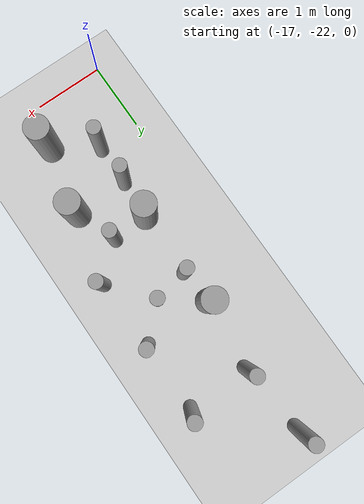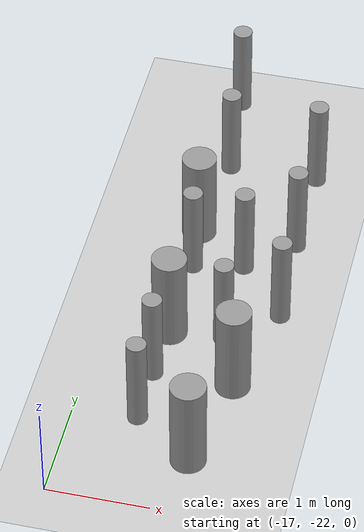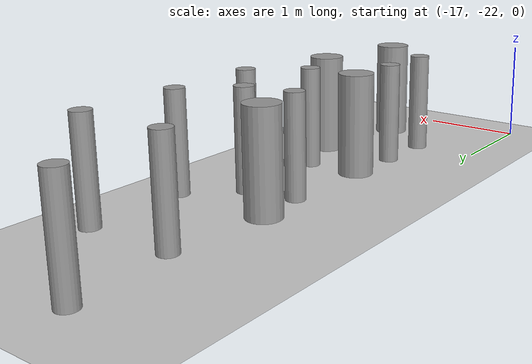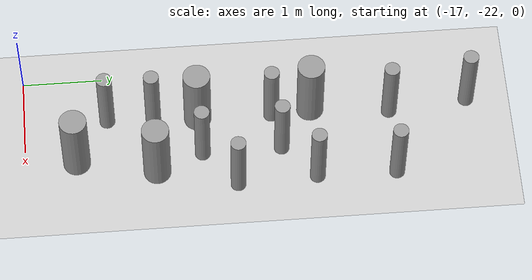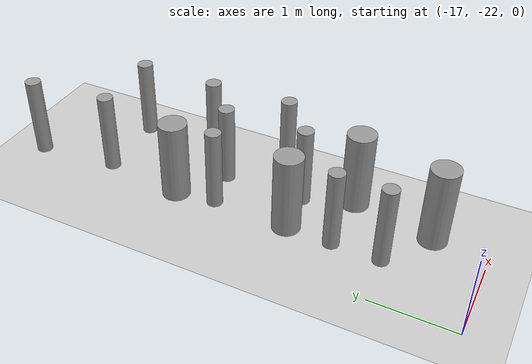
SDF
<sdf version="1.6">
 <world name="default">
  <model name="ground_plane">
   <static>1</static>
   <link name="link">
    <collision name="collision">
     <geometry><plane><normal>0 0 1</normal><size>100 100</size></plane></geometry>
     <surface><friction><ode><mu>100</mu><mu2>50</mu2></ode></friction></surface>
    </collision>
    <visual name="visual">
     <cast_shadows>0</cast_shadows>
     <geometry><plane><normal>0 0 1</normal><size>100 100</size></plane></geometry>
     <material>
      <script><uri>file://media/materials/scripts/gazebo.material</uri><name>Gazebo/Grey</name></script>
     </material>
    </visual>
   </link>
  </model>
  <model name="cyl_wall_clone_clone_1_clone_1_clone_clone_clone_clone_3">
   <link name="link_0">
    <pose>-2.73893 -0.366465 0 0 -0 0</pose>
    <inertial>
     <mass>0.0374993</mass>
     <inertia>
      <ixx>0.00321281</ixx>
      <ixy>0</ixy>
      <ixz>0</ixz>
      <iyy>0.00321281</iyy>
      <iyz>0</iyz>
      <izz>0.000175774</izz>
     </inertia>
    </inertial>
    <visual name="visual">
     <geometry><cylinder><radius>0.0968661</radius><length>1</length></cylinder></geometry>
     <material>
      <lighting>1</lighting>
      <script><uri>file://media/materials/scripts/gazebo.material</uri><name>Gazebo/Grey</name></script>
      <ambient>0.3 0.3 0.3 1</ambient>
      <diffuse>0.7 0.7 0.7 1</diffuse>
      <specular>0.01 0.01 0.01 1</specular>
      <emissive>0 0 0 1</emissive>
     </material>
    </visual>
    <collision name="collision">
     <geometry><cylinder><radius>0.096866</radius><length>1</length></cylinder></geometry>
     <surface>
      <friction>
       <ode><mu>1</mu><mu2>1</mu2><fdir1>0 0 0</fdir1><slip1>0</slip1><slip2>0</slip2></ode>
       <torsional>
        <coefficient>1</coefficient>
        <patch_radius>0</patch_radius>
        <surface_radius>0</surface_radius>
        <use_patch_radius>1</use_patch_radius>
        <ode><slip>0</slip></ode>
       </torsional>
      </friction>
      <bounce><restitution_coefficient>0</restitution_coefficient><threshold>1e+06</threshold></bounce>
      <contact>
       <collide_without_contact>0</collide_without_contact>
       <collide_without_contact_bitmask>1</collide_without_contact_bitmask>
       <collide_bitmask>1</collide_bitmask>
       <ode>
        <soft_cfm>0</soft_cfm>
        <soft_erp>0.2</soft_erp>
        <kp>1e+13</kp>
        <kd>1</kd>
        <max_vel>0.01</max_vel>
        <min_depth>0</min_depth>
       </ode>
       <bullet>
        <split_impulse>1</split_impulse>
        <split_impulse_penetration_threshold>-0.01</split_impulse_penetration_threshold>
        <soft_cfm>0</soft_cfm>
        <soft_erp>0.2</soft_erp>
        <kp>1e+13</kp>
        <kd>1</kd>
       </bullet>
      </contact>
     </surface>
    </collision>
   </link>
   <link name="link_0_clone">
    <pose>-1.73893 0.61877 0 0 -0 0</pose>
    <inertial>
     <mass>0.0374993</mass>
     <inertia>
      <ixx>0.00321281</ixx>
      <ixy>0</ixy>
      <ixz>0</ixz>
      <iyy>0.00321281</iyy>
      <iyz>0</iyz>
      <izz>0.000175774</izz>
     </inertia>
    </inertial>
    <visual name="visual">
     <geometry><cylinder><radius>0.0968661</radius><length>1</length></cylinder></geometry>
     <material>
      <lighting>1</lighting>
      <script><uri>file://media/materials/scripts/gazebo.material</uri><name>Gazebo/Grey</name></script>
      <ambient>0.3 0.3 0.3 1</ambient>
      <diffuse>0.7 0.7 0.7 1</diffuse>
      <specular>0.01 0.01 0.01 1</specular>
      <emissive>0 0 0 1</emissive>
      <shader type="pixel"/>
     </material>
    </visual>
    <collision name="collision">
     <geometry><cylinder><radius>0.096866</radius><length>1</length></cylinder></geometry>
     <surface>
      <friction>
       <ode><mu>1</mu><mu2>1</mu2><fdir1>0 0 0</fdir1><slip1>0</slip1><slip2>0</slip2></ode>
       <torsional>
        <coefficient>1</coefficient>
        <patch_radius>0</patch_radius>
        <surface_radius>0</surface_radius>
        <use_patch_radius>1</use_patch_radius>
        <ode><slip>0</slip></ode>
       </torsional>
      </friction>
      <bounce><restitution_coefficient>0</restitution_coefficient><threshold>1e+06</threshold></bounce>
      <contact>
       <collide_without_contact>0</collide_without_contact>
       <collide_without_contact_bitmask>1</collide_without_contact_bitmask>
       <collide_bitmask>1</collide_bitmask>
       <ode>
        <soft_cfm>0</soft_cfm>
        <soft_erp>0.2</soft_erp>
        <kp>1e+13</kp>
        <kd>1</kd>
        <max_vel>0.01</max_vel>
        <min_depth>0</min_depth>
       </ode>
       <bullet>
        <split_impulse>1</split_impulse>
        <split_impulse_penetration_threshold>-0.01</split_impulse_penetration_threshold>
        <soft_cfm>0</soft_cfm>
        <soft_erp>0.2</soft_erp>
        <kp>1e+13</kp>
        <kd>1</kd>
       </bullet>
      </contact>
     </surface>
    </collision>
   </link>
   <link name="link_0_clone_clone">
    <pose>-0.327073 0.143919 0 0 -0 0</pose>
    <inertial>
     <mass>0.0374993</mass>
     <inertia>
      <ixx>0.00321281</ixx>
      <ixy>0</ixy>
      <ixz>0</ixz>
      <iyy>0.00321281</iyy>
      <iyz>0</iyz>
      <izz>0.000175774</izz>
     </inertia>
    </inertial>
    <visual name="visual">
     <geometry><cylinder><radius>0.0968661</radius><length>1</length></cylinder></geometry>
     <material>
      <lighting>1</lighting>
      <script><uri>file://media/materials/scripts/gazebo.material</uri><name>Gazebo/Grey</name></script>
      <ambient>0.3 0.3 0.3 1</ambient>
      <diffuse>0.7 0.7 0.7 1</diffuse>
      <specular>0.01 0.01 0.01 1</specular>
      <emissive>0 0 0 1</emissive>
      <shader type="pixel"/>
     </material>
    </visual>
    <collision name="collision">
     <geometry><cylinder><radius>0.096866</radius><length>1</length></cylinder></geometry>
     <surface>
      <friction>
       <ode><mu>1</mu><mu2>1</mu2><fdir1>0 0 0</fdir1><slip1>0</slip1><slip2>0</slip2></ode>
       <torsional>
        <coefficient>1</coefficient>
        <patch_radius>0</patch_radius>
        <surface_radius>0</surface_radius>
        <use_patch_radius>1</use_patch_radius>
        <ode><slip>0</slip></ode>
       </torsional>
      </friction>
      <bounce><restitution_coefficient>0</restitution_coefficient><threshold>1e+06</threshold></bounce>
      <contact>
       <collide_without_contact>0</collide_without_contact>
       <collide_without_contact_bitmask>1</collide_without_contact_bitmask>
       <collide_bitmask>1</collide_bitmask>
       <ode>
        <soft_cfm>0</soft_cfm>
        <soft_erp>0.2</soft_erp>
        <kp>1e+13</kp>
        <kd>1</kd>
        <max_vel>0.01</max_vel>
        <min_depth>0</min_depth>
       </ode>
       <bullet>
        <split_impulse>1</split_impulse>
        <split_impulse_penetration_threshold>-0.01</split_impulse_penetration_threshold>
        <soft_cfm>0</soft_cfm>
        <soft_erp>0.2</soft_erp>
        <kp>1e+13</kp>
        <kd>1</kd>
       </bullet>
      </contact>
     </surface>
    </collision>
   </link>
   <link name="link_0_clone_clone_0">
    <pose>1.26107 -0.419359 0 0 -0 0</pose>
    <inertial>
     <mass>0.0374993</mass>
     <inertia>
      <ixx>0.00321281</ixx>
      <ixy>0</ixy>
      <ixz>0</ixz>
      <iyy>0.00321281</iyy>
      <iyz>0</iyz>
      <izz>0.000175774</izz>
     </inertia>
    </inertial>
    <visual name="visual">
     <geometry><cylinder><radius>0.0968661</radius><length>1</length></cylinder></geometry>
     <material>
      <lighting>1</lighting>
      <script><uri>file://media/materials/scripts/gazebo.material</uri><name>Gazebo/Grey</name></script>
      <ambient>0.3 0.3 0.3 1</ambient>
      <diffuse>0.7 0.7 0.7 1</diffuse>
      <specular>0.01 0.01 0.01 1</specular>
      <emissive>0 0 0 1</emissive>
      <shader type="pixel"/>
     </material>
    </visual>
    <collision name="collision">
     <geometry><cylinder><radius>0.096866</radius><length>1</length></cylinder></geometry>
     <surface>
      <friction>
       <ode><mu>1</mu><mu2>1</mu2><fdir1>0 0 0</fdir1><slip1>0</slip1><slip2>0</slip2></ode>
       <torsional>
        <coefficient>1</coefficient>
        <patch_radius>0</patch_radius>
        <surface_radius>0</surface_radius>
        <use_patch_radius>1</use_patch_radius>
        <ode><slip>0</slip></ode>
       </torsional>
      </friction>
      <bounce><restitution_coefficient>0</restitution_coefficient><threshold>1e+06</threshold></bounce>
      <contact>
       <collide_without_contact>0</collide_without_contact>
       <collide_without_contact_bitmask>1</collide_without_contact_bitmask>
       <collide_bitmask>1</collide_bitmask>
       <ode>
        <soft_cfm>0</soft_cfm>
        <soft_erp>0.2</soft_erp>
        <kp>1e+13</kp>
        <kd>1</kd>
        <max_vel>0.01</max_vel>
        <min_depth>0</min_depth>
       </ode>
       <bullet>
        <split_impulse>1</split_impulse>
        <split_impulse_penetration_threshold>-0.01</split_impulse_penetration_threshold>
        <soft_cfm>0</soft_cfm>
        <soft_erp>0.2</soft_erp>
        <kp>1e+13</kp>
        <kd>1</kd>
       </bullet>
      </contact>
     </surface>
    </collision>
   </link>
   <link name="link_0_clone_clone_1">
    <pose>-1.73893 -0.277168 0 0 -0 0</pose>
    <inertial>
     <mass>0.0374993</mass>
     <inertia>
      <ixx>0.00321281</ixx>
      <ixy>0</ixy>
      <ixz>0</ixz>
      <iyy>0.00321281</iyy>
      <iyz>0</iyz>
      <izz>0.000175774</izz>
     </inertia>
    </inertial>
    <visual name="visual">
     <geometry><cylinder><radius>0.0968661</radius><length>1</length></cylinder></geometry>
     <material>
      <lighting>1</lighting>
      <script><uri>file://media/materials/scripts/gazebo.material</uri><name>Gazebo/Grey</name></script>
      <ambient>0.3 0.3 0.3 1</ambient>
      <diffuse>0.7 0.7 0.7 1</diffuse>
      <specular>0.01 0.01 0.01 1</specular>
      <emissive>0 0 0 1</emissive>
      <shader type="pixel"/>
     </material>
    </visual>
    <collision name="collision">
     <geometry><cylinder><radius>0.096866</radius><length>1</length></cylinder></geometry>
     <surface>
      <friction>
       <ode><mu>1</mu><mu2>1</mu2><fdir1>0 0 0</fdir1><slip1>0</slip1><slip2>0</slip2></ode>
       <torsional>
        <coefficient>1</coefficient>
        <patch_radius>0</patch_radius>
        <surface_radius>0</surface_radius>
        <use_patch_radius>1</use_patch_radius>
        <ode><slip>0</slip></ode>
       </torsional>
      </friction>
      <bounce><restitution_coefficient>0</restitution_coefficient><threshold>1e+06</threshold></bounce>
      <contact>
       <collide_without_contact>0</collide_without_contact>
       <collide_without_contact_bitmask>1</collide_without_contact_bitmask>
       <collide_bitmask>1</collide_bitmask>
       <ode>
        <soft_cfm>0</soft_cfm>
        <soft_erp>0.2</soft_erp>
        <kp>1e+13</kp>
        <kd>1</kd>
        <max_vel>0.01</max_vel>
        <min_depth>0</min_depth>
       </ode>
       <bullet>
        <split_impulse>1</split_impulse>
        <split_impulse_penetration_threshold>-0.01</split_impulse_penetration_threshold>
        <soft_cfm>0</soft_cfm>
        <soft_erp>0.2</soft_erp>
        <kp>1e+13</kp>
        <kd>1</kd>
       </bullet>
      </contact>
     </surface>
    </collision>
   </link>
   <link name="link_0_clone_clone_2">
    <pose>-0.738934 0.593961 0 0 -0 0</pose>
    <inertial>
     <mass>0.0374993</mass>
     <inertia>
      <ixx>0.00321281</ixx>
      <ixy>0</ixy>
      <ixz>0</ixz>
      <iyy>0.00321281</iyy>
      <iyz>0</iyz>
      <izz>0.000175774</izz>
     </inertia>
    </inertial>
    <visual name="visual">
     <geometry><cylinder><radius>0.0968661</radius><length>1</length></cylinder></geometry>
     <material>
      <lighting>1</lighting>
      <script><uri>file://media/materials/scripts/gazebo.material</uri><name>Gazebo/Grey</name></script>
      <ambient>0.3 0.3 0.3 1</ambient>
      <diffuse>0.7 0.7 0.7 1</diffuse>
      <specular>0.01 0.01 0.01 1</specular>
      <emissive>0 0 0 1</emissive>
      <shader type="pixel"/>
     </material>
    </visual>
    <collision name="collision">
     <geometry><cylinder><radius>0.096866</radius><length>1</length></cylinder></geometry>
     <surface>
      <friction>
       <ode><mu>1</mu><mu2>1</mu2><fdir1>0 0 0</fdir1><slip1>0</slip1><slip2>0</slip2></ode>
       <torsional>
        <coefficient>1</coefficient>
        <patch_radius>0</patch_radius>
        <surface_radius>0</surface_radius>
        <use_patch_radius>1</use_patch_radius>
        <ode><slip>0</slip></ode>
       </torsional>
      </friction>
      <bounce><restitution_coefficient>0</restitution_coefficient><threshold>1e+06</threshold></bounce>
      <contact>
       <collide_without_contact>0</collide_without_contact>
       <collide_without_contact_bitmask>1</collide_without_contact_bitmask>
       <collide_bitmask>1</collide_bitmask>
       <ode>
        <soft_cfm>0</soft_cfm>
        <soft_erp>0.2</soft_erp>
        <kp>1e+13</kp>
        <kd>1</kd>
        <max_vel>0.01</max_vel>
        <min_depth>0</min_depth>
       </ode>
       <bullet>
        <split_impulse>1</split_impulse>
        <split_impulse_penetration_threshold>-0.01</split_impulse_penetration_threshold>
        <soft_cfm>0</soft_cfm>
        <soft_erp>0.2</soft_erp>
        <kp>1e+13</kp>
        <kd>1</kd>
       </bullet>
      </contact>
     </surface>
    </collision>
   </link>
   <link name="link_0_clone_clone_3">
    <pose>0.261066 0.624849 0 0 -0 0</pose>
    <inertial>
     <mass>0.0374993</mass>
     <inertia>
      <ixx>0.00321281</ixx>
      <ixy>0</ixy>
      <ixz>0</ixz>
      <iyy>0.00321281</iyy>
      <iyz>0</iyz>
      <izz>0.000175774</izz>
     </inertia>
    </inertial>
    <visual name="visual">
     <geometry><cylinder><radius>0.0968661</radius><length>1</length></cylinder></geometry>
     <material>
      <lighting>1</lighting>
      <script><uri>file://media/materials/scripts/gazebo.material</uri><name>Gazebo/Grey</name></script>
      <ambient>0.3 0.3 0.3 1</ambient>
      <diffuse>0.7 0.7 0.7 1</diffuse>
      <specular>0.01 0.01 0.01 1</specular>
      <emissive>0 0 0 1</emissive>
      <shader type="pixel"/>
     </material>
    </visual>
    <collision name="collision">
     <geometry><cylinder><radius>0.096866</radius><length>1</length></cylinder></geometry>
     <surface>
      <friction>
       <ode><mu>1</mu><mu2>1</mu2><fdir1>0 0 0</fdir1><slip1>0</slip1><slip2>0</slip2></ode>
       <torsional>
        <coefficient>1</coefficient>
        <patch_radius>0</patch_radius>
        <surface_radius>0</surface_radius>
        <use_patch_radius>1</use_patch_radius>
        <ode><slip>0</slip></ode>
       </torsional>
      </friction>
      <bounce><restitution_coefficient>0</restitution_coefficient><threshold>1e+06</threshold></bounce>
      <contact>
       <collide_without_contact>0</collide_without_contact>
       <collide_without_contact_bitmask>1</collide_without_contact_bitmask>
       <collide_bitmask>1</collide_bitmask>
       <ode>
        <soft_cfm>0</soft_cfm>
        <soft_erp>0.2</soft_erp>
        <kp>1e+13</kp>
        <kd>1</kd>
        <max_vel>0.01</max_vel>
        <min_depth>0</min_depth>
       </ode>
       <bullet>
        <split_impulse>1</split_impulse>
        <split_impulse_penetration_threshold>-0.01</split_impulse_penetration_threshold>
        <soft_cfm>0</soft_cfm>
        <soft_erp>0.2</soft_erp>
        <kp>1e+13</kp>
        <kd>1</kd>
       </bullet>
      </contact>
     </surface>
    </collision>
   </link>
   <link name="link_0_clone_clone_4">
    <pose>-0.239049 -0.353105 0 0 -0 0</pose>
    <inertial>
     <mass>0.0374993</mass>
     <inertia>
      <ixx>0.00321281</ixx>
      <ixy>0</ixy>
      <ixz>0</ixz>
      <iyy>0.00321281</iyy>
      <iyz>0</iyz>
      <izz>0.000175774</izz>
     </inertia>
    </inertial>
    <visual name="visual">
     <geometry><cylinder><radius>0.0968661</radius><length>1</length></cylinder></geometry>
     <material>
      <lighting>1</lighting>
      <script><uri>file://media/materials/scripts/gazebo.material</uri><name>Gazebo/Grey</name></script>
      <ambient>0.3 0.3 0.3 1</ambient>
      <diffuse>0.7 0.7 0.7 1</diffuse>
      <specular>0.01 0.01 0.01 1</specular>
      <emissive>0 0 0 1</emissive>
      <shader type="pixel"/>
     </material>
    </visual>
    <collision name="collision">
     <geometry><cylinder><radius>0.096866</radius><length>1</length></cylinder></geometry>
     <surface>
      <friction>
       <ode><mu>1</mu><mu2>1</mu2><fdir1>0 0 0</fdir1><slip1>0</slip1><slip2>0</slip2></ode>
       <torsional>
        <coefficient>1</coefficient>
        <patch_radius>0</patch_radius>
        <surface_radius>0</surface_radius>
        <use_patch_radius>1</use_patch_radius>
        <ode><slip>0</slip></ode>
       </torsional>
      </friction>
      <bounce><restitution_coefficient>0</restitution_coefficient><threshold>1e+06</threshold></bounce>
      <contact>
       <collide_without_contact>0</collide_without_contact>
       <collide_without_contact_bitmask>1</collide_without_contact_bitmask>
       <collide_bitmask>1</collide_bitmask>
       <ode>
        <soft_cfm>0</soft_cfm>
        <soft_erp>0.2</soft_erp>
        <kp>1e+13</kp>
        <kd>1</kd>
        <max_vel>0.01</max_vel>
        <min_depth>0</min_depth>
       </ode>
       <bullet>
        <split_impulse>1</split_impulse>
        <split_impulse_penetration_threshold>-0.01</split_impulse_penetration_threshold>
        <soft_cfm>0</soft_cfm>
        <soft_erp>0.2</soft_erp>
        <kp>1e+13</kp>
        <kd>1</kd>
       </bullet>
      </contact>
     </surface>
    </collision>
   </link>
   <link name="link_0_clone_clone_5">
    <pose>0.672792 0.143919 0 0 -0 0</pose>
    <inertial>
     <mass>0.0374993</mass>
     <inertia>
      <ixx>0.00321281</ixx>
      <ixy>0</ixy>
      <ixz>0</ixz>
      <iyy>0.00321281</iyy>
      <iyz>0</iyz>
      <izz>0.000175774</izz>
     </inertia>
    </inertial>
    <visual name="visual">
     <geometry><cylinder><radius>0.0968661</radius><length>1</length></cylinder></geometry>
     <material>
      <lighting>1</lighting>
      <script><uri>file://media/materials/scripts/gazebo.material</uri><name>Gazebo/Grey</name></script>
      <ambient>0.3 0.3 0.3 1</ambient>
      <diffuse>0.7 0.7 0.7 1</diffuse>
      <specular>0.01 0.01 0.01 1</specular>
      <emissive>0 0 0 1</emissive>
      <shader type="pixel"/>
     </material>
    </visual>
    <collision name="collision">
     <geometry><cylinder><radius>0.096866</radius><length>1</length></cylinder></geometry>
     <surface>
      <friction>
       <ode><mu>1</mu><mu2>1</mu2><fdir1>0 0 0</fdir1><slip1>0</slip1><slip2>0</slip2></ode>
       <torsional>
        <coefficient>1</coefficient>
        <patch_radius>0</patch_radius>
        <surface_radius>0</surface_radius>
        <use_patch_radius>1</use_patch_radius>
        <ode><slip>0</slip></ode>
       </torsional>
      </friction>
      <bounce><restitution_coefficient>0</restitution_coefficient><threshold>1e+06</threshold></bounce>
      <contact>
       <collide_without_contact>0</collide_without_contact>
       <collide_without_contact_bitmask>1</collide_without_contact_bitmask>
       <collide_bitmask>1</collide_bitmask>
       <ode>
        <soft_cfm>0</soft_cfm>
        <soft_erp>0.2</soft_erp>
        <kp>1e+13</kp>
        <kd>1</kd>
        <max_vel>0.01</max_vel>
        <min_depth>0</min_depth>
       </ode>
       <bullet>
        <split_impulse>1</split_impulse>
        <split_impulse_penetration_threshold>-0.01</split_impulse_penetration_threshold>
        <soft_cfm>0</soft_cfm>
        <soft_erp>0.2</soft_erp>
        <kp>1e+13</kp>
        <kd>1</kd>
       </bullet>
      </contact>
     </surface>
    </collision>
   </link>
   <link name="link_0_clone_clone_6">
    <pose>1.84596 -0.433423 0 0 -0 0</pose>
    <inertial>
     <mass>0.0374993</mass>
     <inertia>
      <ixx>0.00321281</ixx>
      <ixy>0</ixy>
      <ixz>0</ixz>
      <iyy>0.00321281</iyy>
      <iyz>0</iyz>
      <izz>0.000175774</izz>
     </inertia>
    </inertial>
    <visual name="visual">
     <geometry><cylinder><radius>0.0968661</radius><length>1</length></cylinder></geometry>
     <material>
      <lighting>1</lighting>
      <script><uri>file://media/materials/scripts/gazebo.material</uri><name>Gazebo/Grey</name></script>
      <ambient>0.3 0.3 0.3 1</ambient>
      <diffuse>0.7 0.7 0.7 1</diffuse>
      <specular>0.01 0.01 0.01 1</specular>
      <emissive>0 0 0 1</emissive>
      <shader type="pixel"/>
     </material>
    </visual>
    <collision name="collision">
     <geometry><cylinder><radius>0.096866</radius><length>1</length></cylinder></geometry>
     <surface>
      <friction>
       <ode><mu>1</mu><mu2>1</mu2><fdir1>0 0 0</fdir1><slip1>0</slip1><slip2>0</slip2></ode>
       <torsional>
        <coefficient>1</coefficient>
        <patch_radius>0</patch_radius>
        <surface_radius>0</surface_radius>
        <use_patch_radius>1</use_patch_radius>
        <ode><slip>0</slip></ode>
       </torsional>
      </friction>
      <bounce><restitution_coefficient>0</restitution_coefficient><threshold>1e+06</threshold></bounce>
      <contact>
       <collide_without_contact>0</collide_without_contact>
       <collide_without_contact_bitmask>1</collide_without_contact_bitmask>
       <collide_bitmask>1</collide_bitmask>
       <ode>
        <soft_cfm>0</soft_cfm>
        <soft_erp>0.2</soft_erp>
        <kp>1e+13</kp>
        <kd>1</kd>
        <max_vel>0.01</max_vel>
        <min_depth>0</min_depth>
       </ode>
       <bullet>
        <split_impulse>1</split_impulse>
        <split_impulse_penetration_threshold>-0.01</split_impulse_penetration_threshold>
        <soft_cfm>0</soft_cfm>
        <soft_erp>0.2</soft_erp>
        <kp>1e+13</kp>
        <kd>1</kd>
       </bullet>
      </contact>
     </surface>
    </collision>
   </link>
   <link name="link_1">
    <pose>-0.738934 -0.397931 0 0 -0 0</pose>
    <inertial>
     <mass>0.117398</mass>
     <inertia>
      <ixx>0.0106445</ixx>
      <ixy>0</ixy>
      <ixz>0</ixz>
      <iyy>0.0106445</iyy>
      <iyz>0</iyz>
      <izz>0.00172278</izz>
     </inertia>
    </inertial>
    <visual name="visual">
     <geometry><cylinder><radius>0.171317</radius><length>1</length></cylinder></geometry>
     <material>
      <lighting>1</lighting>
      <script><uri>file://media/materials/scripts/gazebo.material</uri><name>Gazebo/Grey</name></script>
      <ambient>0.3 0.3 0.3 1</ambient>
      <diffuse>0.7 0.7 0.7 1</diffuse>
      <specular>0.01 0.01 0.01 1</specular>
      <emissive>0 0 0 1</emissive>
     </material>
    </visual>
    <collision name="collision">
     <geometry><cylinder><radius>0.171317</radius><length>1</length></cylinder></geometry>
     <surface>
      <friction>
       <ode><mu>1</mu><mu2>1</mu2><fdir1>0 0 0</fdir1><slip1>0</slip1><slip2>0</slip2></ode>
       <torsional>
        <coefficient>1</coefficient>
        <patch_radius>0</patch_radius>
        <surface_radius>0</surface_radius>
        <use_patch_radius>1</use_patch_radius>
        <ode><slip>0</slip></ode>
       </torsional>
      </friction>
      <bounce><restitution_coefficient>0</restitution_coefficient><threshold>1e+06</threshold></bounce>
      <contact>
       <collide_without_contact>0</collide_without_contact>
       <collide_without_contact_bitmask>1</collide_without_contact_bitmask>
       <collide_bitmask>1</collide_bitmask>
       <ode>
        <soft_cfm>0</soft_cfm>
        <soft_erp>0.2</soft_erp>
        <kp>1e+13</kp>
        <kd>1</kd>
        <max_vel>0.01</max_vel>
        <min_depth>0</min_depth>
       </ode>
       <bullet>
        <split_impulse>1</split_impulse>
        <split_impulse_penetration_threshold>-0.01</split_impulse_penetration_threshold>
        <soft_cfm>0</soft_cfm>
        <soft_erp>0.2</soft_erp>
        <kp>1e+13</kp>
        <kd>1</kd>
       </bullet>
      </contact>
     </surface>
    </collision>
   </link>
   <link name="link_1_clone">
    <pose>0.697784 -0.380861 0 0 -0 0</pose>
    <inertial>
     <mass>0.117398</mass>
     <inertia>
      <ixx>0.0106445</ixx>
      <ixy>0</ixy>
      <ixz>0</ixz>
      <iyy>0.0106445</iyy>
      <iyz>0</iyz>
      <izz>0.00172278</izz>
     </inertia>
    </inertial>
    <visual name="visual">
     <geometry><cylinder><radius>0.171317</radius><length>1</length></cylinder></geometry>
     <material>
      <lighting>1</lighting>
      <script><uri>file://media/materials/scripts/gazebo.material</uri><name>Gazebo/Grey</name></script>
      <ambient>0.3 0.3 0.3 1</ambient>
      <diffuse>0.7 0.7 0.7 1</diffuse>
      <specular>0.01 0.01 0.01 1</specular>
      <emissive>0 0 0 1</emissive>
      <shader type="pixel"/>
     </material>
    </visual>
    <collision name="collision">
     <geometry><cylinder><radius>0.171317</radius><length>1</length></cylinder></geometry>
     <surface>
      <friction>
       <ode><mu>1</mu><mu2>1</mu2><fdir1>0 0 0</fdir1><slip1>0</slip1><slip2>0</slip2></ode>
       <torsional>
        <coefficient>1</coefficient>
        <patch_radius>0</patch_radius>
        <surface_radius>0</surface_radius>
        <use_patch_radius>1</use_patch_radius>
        <ode><slip>0</slip></ode>
       </torsional>
      </friction>
      <bounce><restitution_coefficient>0</restitution_coefficient><threshold>1e+06</threshold></bounce>
      <contact>
       <collide_without_contact>0</collide_without_contact>
       <collide_without_contact_bitmask>1</collide_without_contact_bitmask>
       <collide_bitmask>1</collide_bitmask>
       <ode>
        <soft_cfm>0</soft_cfm>
        <soft_erp>0.2</soft_erp>
        <kp>1e+13</kp>
        <kd>1</kd>
        <max_vel>0.01</max_vel>
        <min_depth>0</min_depth>
       </ode>
       <bullet>
        <split_impulse>1</split_impulse>
        <split_impulse_penetration_threshold>-0.01</split_impulse_penetration_threshold>
        <soft_cfm>0</soft_cfm>
        <soft_erp>0.2</soft_erp>
        <kp>1e+13</kp>
        <kd>1</kd>
       </bullet>
      </contact>
     </surface>
    </collision>
   </link>
   <link name="link_1_clone_0">
    <pose>1.26107 0.358974 0 0 -0 0</pose>
    <inertial>
     <mass>0.117398</mass>
     <inertia>
      <ixx>0.0106445</ixx>
      <ixy>0</ixy>
      <ixz>0</ixz>
      <iyy>0.0106445</iyy>
      <iyz>0</iyz>
      <izz>0.00172278</izz>
     </inertia>
    </inertial>
    <visual name="visual">
     <geometry><cylinder><radius>0.171317</radius><length>1</length></cylinder></geometry>
     <material>
      <lighting>1</lighting>
      <script><uri>file://media/materials/scripts/gazebo.material</uri><name>Gazebo/Grey</name></script>
      <ambient>0.3 0.3 0.3 1</ambient>
      <diffuse>0.7 0.7 0.7 1</diffuse>
      <specular>0.01 0.01 0.01 1</specular>
      <emissive>0 0 0 1</emissive>
      <shader type="pixel"/>
     </material>
    </visual>
    <collision name="collision">
     <geometry><cylinder><radius>0.171317</radius><length>1</length></cylinder></geometry>
     <surface>
      <friction>
       <ode><mu>1</mu><mu2>1</mu2><fdir1>0 0 0</fdir1><slip1>0</slip1><slip2>0</slip2></ode>
       <torsional>
        <coefficient>1</coefficient>
        <patch_radius>0</patch_radius>
        <surface_radius>0</surface_radius>
        <use_patch_radius>1</use_patch_radius>
        <ode><slip>0</slip></ode>
       </torsional>
      </friction>
      <bounce><restitution_coefficient>0</restitution_coefficient><threshold>1e+06</threshold></bounce>
      <contact>
       <collide_without_contact>0</collide_without_contact>
       <collide_without_contact_bitmask>1</collide_without_contact_bitmask>
       <collide_bitmask>1</collide_bitmask>
       <ode>
        <soft_cfm>0</soft_cfm>
        <soft_erp>0.2</soft_erp>
        <kp>1e+13</kp>
        <kd>1</kd>
        <max_vel>0.01</max_vel>
        <min_depth>0</min_depth>
       </ode>
       <bullet>
        <split_impulse>1</split_impulse>
        <split_impulse_penetration_threshold>-0.01</split_impulse_penetration_threshold>
        <soft_cfm>0</soft_cfm>
        <soft_erp>0.2</soft_erp>
        <kp>1e+13</kp>
        <kd>1</kd>
       </bullet>
      </contact>
     </surface>
    </collision>
   </link>
   <link name="link_1_clone_1">
    <pose>2.26107 0.143919 0 0 -0 0</pose>
    <inertial>
     <mass>0.117398</mass>
     <inertia>
      <ixx>0.0106445</ixx>
      <ixy>0</ixy>
      <ixz>0</ixz>
      <iyy>0.0106445</iyy>
      <iyz>0</iyz>
      <izz>0.00172278</izz>
     </inertia>
    </inertial>
    <visual name="visual">
     <geometry><cylinder><radius>0.171317</radius><length>1</length></cylinder></geometry>
     <material>
      <lighting>1</lighting>
      <script><uri>file://media/materials/scripts/gazebo.material</uri><name>Gazebo/Grey</name></script>
      <ambient>0.3 0.3 0.3 1</ambient>
      <diffuse>0.7 0.7 0.7 1</diffuse>
      <specular>0.01 0.01 0.01 1</specular>
      <emissive>0 0 0 1</emissive>
      <shader type="pixel"/>
     </material>
    </visual>
    <collision name="collision">
     <geometry><cylinder><radius>0.171317</radius><length>1</length></cylinder></geometry>
     <surface>
      <friction>
       <ode><mu>1</mu><mu2>1</mu2><fdir1>0 0 0</fdir1><slip1>0</slip1><slip2>0</slip2></ode>
       <torsional>
        <coefficient>1</coefficient>
        <patch_radius>0</patch_radius>
        <surface_radius>0</surface_radius>
        <use_patch_radius>1</use_patch_radius>
        <ode><slip>0</slip></ode>
       </torsional>
      </friction>
      <bounce><restitution_coefficient>0</restitution_coefficient><threshold>1e+06</threshold></bounce>
      <contact>
       <collide_without_contact>0</collide_without_contact>
       <collide_without_contact_bitmask>1</collide_without_contact_bitmask>
       <collide_bitmask>1</collide_bitmask>
       <ode>
        <soft_cfm>0</soft_cfm>
        <soft_erp>0.2</soft_erp>
        <kp>1e+13</kp>
        <kd>1</kd>
        <max_vel>0.01</max_vel>
        <min_depth>0</min_depth>
       </ode>
       <bullet>
        <split_impulse>1</split_impulse>
        <split_impulse_penetration_threshold>-0.01</split_impulse_penetration_threshold>
        <soft_cfm>0</soft_cfm>
        <soft_erp>0.2</soft_erp>
        <kp>1e+13</kp>
        <kd>1</kd>
       </bullet>
      </contact>
     </surface>
    </collision>
   </link>
   <static>1</static>
   <pose>-15.9661 -19.0963 0.5 0 0 -1.55814</pose>
  </model>
 </world>
</sdf>
